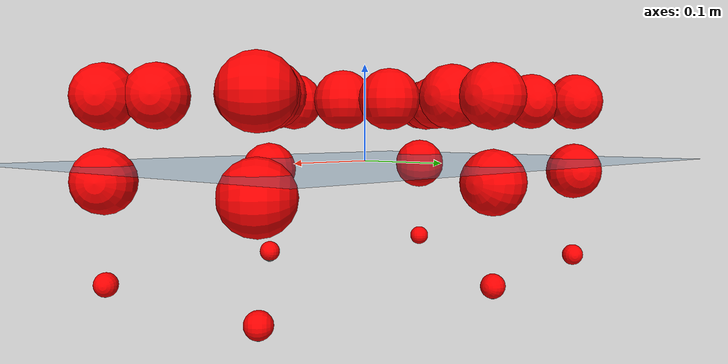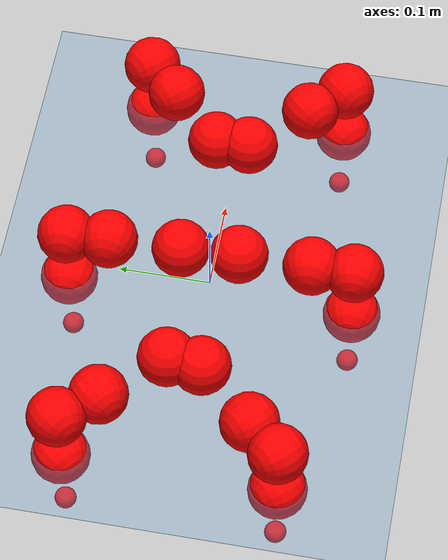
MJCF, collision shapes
<mujoco model="Golem">
  <compiler angle="radian" assetdir="assets" balanceinertia="true" inertiafromgeom="false"/>

  <option timestep="0.005" density="1.2" viscosity="2e-05"/>

  <size nkey="1"/>

  <visual>
    <quality shadowsize="8192"/>
    <map shadowclip="0.5"/>
  </visual>

  <default>
    <default class="/">
      <joint armature="0.01" damping="0.01" frictionloss="0.01"/>
      <geom contype="0" conaffinity="0" group="1" solref="-1000 -80"/>
      <site size="0.01 0.005 0.005" group="5"/>
      <general forcelimited="true" biastype="affine" gainprm="25" biasprm="0 -25 -0.5"/>
      <default class="visual">
        <geom type="mesh" group="2"/>
      </default>
      <default class="collision">
        <geom group="3"/>
      </default>
      <default class="foot">
        <geom size="0.01 0 0" condim="6" group="4" priority="1" solimp="0.015 1 0.01"/>
      </default>
      <default class="reward_collision_sphere">
        <geom group="5" rgba="1 0 0 1"/>
      </default>
    </default>
  </default>

  <asset>
    <texture type="skybox" colorspace="auto" name="//unnamed_texture_0" builtin="gradient" rgb1="0.95 0.95 0.95" rgb2="0.95 0.95 0.95" width="100" height="600"/>
    <texture type="2d" colorspace="auto" name="texplane" builtin="checker" rgb1="0.345 0.575 0.748" rgb2="0.345 0.575 0.748" markrgb="1 1 1" width="512" height="512"/>
    <material name="MatPlane" class="/" texture="texplane" texuniform="true" texrepeat="2 2" specular="0.9"/>
    <mesh name="body" class="/" file="body.stl" scale="0.001 0.001 0.001"/>
    <mesh name="coxa" class="/" file="coxa.stl" scale="0.001 0.001 0.001"/>
    <mesh name="femur" class="/" file="femur.stl" scale="0.001 0.001 0.001"/>
    <mesh name="tibia" class="/" file="tibia.stl" scale="0.001 0.001 0.001"/>
    <mesh name="tarsus" class="/" file="tarsus.stl" scale="0.001 0.001 0.001"/>
  </asset>

  <worldbody>
    <geom name="floor" class="/" size="100 100 0.125" type="plane" group="0" material="MatPlane"/>
    <light name="toplight_shadow" class="/" pos="0 0 5" dir="0.0990148 0.0990148 -0.990148" type="directional" ambient="0.04 0.04 0.04" diffuse="0.55 0.55 0.55" specular="0.12 0.12 0.12"/>
    <light name="toplight_fill" class="/" pos="0 0 5" dir="0.0990148 0.0990148 -0.990148" type="directional" castshadow="false" ambient="0.04 0.04 0.04" diffuse="0.3 0.3 0.3" specular="0.08 0.08 0.08"/>
    <body name="trunk" pos="0.000213286 -0.000191963 -0.000477226" quat="0.999999 0.000147967 0.000999058 -8.85366e-05">
      <inertial pos="-0.000574408 -0.00020752 -0.00360372" quat="1 9.40208e-05 0.000297563 -0.000292701" mass="1.84169" diaginertia="0.00607452 0.000164948 0.010629"/>
      <joint name="//unnamed_joint_0" type="free"/>
      <geom name="//unnamed_geom_1" class="/" pos="0 0 0.0648523" quat="1 0 0 0" type="mesh" rgba="0.9 0.9 0.9 1" mesh="body"/>
      <site name="imu" class="/" pos="0.126658 0.00216259 0.100673" size="0.00786234"/>
      <camera name="track" class="/" pos="0 -0.880097 0" quat="0.707107 0.707107 0 0" mode="trackcom"/>
      <camera name="ego_camera" class="/" pos="0.117694 0 0.101332" quat="-0.5 -0.5 0.5 0.5"/>
      <body name="coxa_RR" pos="-0.162038 -0.0364411 0.064807" quat="0.383123 0.000837693 -0.000424491 -0.923697">
        <inertial pos="-0.000238188 0.000255197 0.00135837" quat="1 -0.00027095 0.000137456 0.00010999" mass="0.0984578" diaginertia="0.00612915 0.000165991 0.0108116"/>
        <joint name="coxa_joint_RR" class="/" pos="0 0 0" axis="-6.24202e-05 0.00633763 -0.99998" range="-3.15222 3.10682" armature="0.0078356" damping="0.00206624" frictionloss="0.00771506"/>
        <geom name="//unnamed_geom_2" class="/" type="mesh" rgba="0.2 0.2 0.2 1" mesh="coxa"/>
        <geom name="//unnamed_geom_3" class="reward_collision_sphere" size="0.0314494" pos="-0.0271601 0 0"/>
        <body name="femur_RR" pos="0.0552284 0.00230262 -0.00112711" quat="0.500125 -0.499853 0.499991 0.50003">
          <inertial pos="-0.000274907 7.02179e-05 0.000374899" quat="0.999998 0.00164946 0.00127214 -0.000394618" mass="0.0976524" diaginertia="0.00603465 0.000164098 0.010829"/>
          <joint name="femur_joint_RR" class="/" pos="0 0 0" axis="0.00230003 -0.00110568 -0.999997" range="-3.10916 3.13731" armature="0.0073959" damping="0.000900094" frictionloss="0.00819847"/>
          <geom name="//unnamed_geom_4" class="/" type="mesh" rgba="0.9 0.9 0.9 1" mesh="femur"/>
          <geom name="//unnamed_geom_5" class="reward_collision_sphere" size="0.0314494"/>
          <body name="tibia_RR" pos="-0.000997495 -0.046637 0.00200846" quat="1.06486e-05 1 -5.1911e-05 -7.32906e-05">
            <inertial pos="0.00078151 8.62674e-05 0.000388607" quat="0.999997 0.00162415 0.0016283 -0.000387683" mass="0.0983012" diaginertia="0.00615432 0.000164634 0.0105466"/>
            <joint name="tibia_joint_RR" class="/" pos="0 0 0" axis="7.85337e-05 -0.00718286 0.999974" range="-3.1061 3.13862" armature="0.0075576" damping="0" frictionloss="0.00776617"/>
            <geom name="//unnamed_geom_6" class="/" type="mesh" rgba="0.2 0.2 0.2 1" mesh="tibia"/>
            <geom name="//unnamed_geom_7" class="reward_collision_sphere" size="0.0314494"/>
            <body name="tarsus_RR" pos="0.0778229 0.00028017 -0.00155604" quat="1 0.000414038 0.000114694 5.46726e-05">
              <inertial pos="0.0555038 0.000537978 -0.000205567" quat="0.499753 0.499195 0.50056 0.50049" mass="0.0961349" diaginertia="0.00598534 0.00016464 0.0105689"/>
              <joint name="tarsus_joint_RR" class="/" pos="0 0 0" axis="0.000266015 -0.00200456 0.999998" range="-3.12128 3.13247" armature="0.00816598" damping="0" frictionloss="0.00786975"/>
              <geom name="//unnamed_geom_8" class="/" type="mesh" rgba="0.9 0.9 0.9 1" mesh="tarsus"/>
              <geom name="foot_1" class="foot" size="0.00745089" pos="0.101398 0 0" quat="0 -0.707107 0 0.707107"/>
              <geom name="//unnamed_geom_10" class="reward_collision_sphere" size="0.0314494"/>
              <geom name="//unnamed_geom_11" class="reward_collision_sphere" size="0.0117935" pos="0.0973237 0 0"/>
              <site name="foot_1" class="foot" pos="0.101398 0 0" quat="0 -0.707107 0 0.707107" size="0.00786234"/>
            </body>
          </body>
        </body>
      </body>
      <body name="coxa_RM" pos="-0.000223485 -0.0588175 0.0648952" quat="0.706802 -0.000115576 0.000578957 -0.707411">
        <inertial pos="-0.000385995 -0.00120404 0.000276841" quat="0.999997 -5.32612e-05 0.00207232 0.00106777" mass="0.0965608" diaginertia="0.0060056 0.000166282 0.0108146"/>
        <joint name="coxa_joint_RM" class="/" pos="0 0 0" axis="0.00750746 -0.00340621 -0.999966" range="-3.14223 3.15666" armature="0.00860064" damping="0.00296363" frictionloss="0.00775679"/>
        <geom name="//unnamed_geom_12" class="/" type="mesh" rgba="0.2 0.2 0.2 1" mesh="coxa"/>
        <geom name="//unnamed_geom_13" class="reward_collision_sphere" size="0.0314494" pos="-0.0271601 0 0"/>
        <body name="femur_RM" pos="0.0513521 -0.000472653 -0.00033969" quat="0.500039 -0.49996 0.5001 0.499902">
          <inertial pos="-0.000166022 -0.000583488 0.00018736" quat="0.999997 -0.000113928 0.000768428 0.00216117" mass="0.0966241" diaginertia="0.00598007 0.000167926 0.0108709"/>
          <joint name="femur_joint_RM" class="/" pos="0 0 0" axis="-0.00263577 -0.00293602 -0.999992" range="-3.12378 3.14096" armature="0.00766132" damping="0.00147656" frictionloss="0.00788314"/>
          <geom name="//unnamed_geom_14" class="/" type="mesh" rgba="0.9 0.9 0.9 1" mesh="femur"/>
          <geom name="//unnamed_geom_15" class="reward_collision_sphere" size="0.0314494"/>
          <body name="tibia_RM" pos="0.000544325 -0.0459751 -0.000300649" quat="-0.000152238 1 -0.000299327 3.98681e-06">
            <inertial pos="-0.000854783 -0.00100527 -0.00124014" quat="0.999985 -0.00161644 -0.00403649 -0.00324977" mass="0.0966284" diaginertia="0.00617495 0.000165061 0.0107816"/>
            <joint name="tibia_joint_RM" class="/" pos="0 0 0" axis="0.000924615 0.00216474 0.999997" range="-3.13954 3.15697" armature="0.00839039" damping="0.000122849" frictionloss="0.00861516"/>
            <geom name="//unnamed_geom_16" class="/" type="mesh" rgba="0.2 0.2 0.2 1" mesh="tibia"/>
            <geom name="//unnamed_geom_17" class="reward_collision_sphere" size="0.0314494"/>
            <body name="tarsus_RM" pos="0.0781353 0.000837611 0.00174864" quat="1 -3.82717e-05 -8.59615e-05 0.00015686">
              <inertial pos="0.054435 0.00165165 0.000122047" quat="0.500328 0.499804 0.500102 0.499766" mass="0.0970731" diaginertia="0.00602113 0.000163047 0.0106918"/>
              <joint name="tarsus_joint_RM" class="/" pos="0 0 0" axis="-0.00066197 0.00038259 1" range="-3.10552 3.12211" armature="0.00865226" damping="4.70401e-05" frictionloss="0.00792904"/>
              <geom name="//unnamed_geom_18" class="/" type="mesh" rgba="0.9 0.9 0.9 1" mesh="tarsus"/>
              <geom name="foot_2" class="foot" size="0.00836166" pos="0.101398 0 0" quat="0 -0.707107 0 0.707107"/>
              <geom name="//unnamed_geom_20" class="reward_collision_sphere" size="0.0314494"/>
              <geom name="//unnamed_geom_21" class="reward_collision_sphere" size="0.0117935" pos="0.0973237 0 0"/>
              <site name="foot_2" class="foot" pos="0.101398 0 0" quat="0 -0.707107 0 0.707107" size="0.00786234"/>
            </body>
          </body>
        </body>
      </body>
      <body name="coxa_RF" pos="0.161229 -0.0372529 0.0670593" quat="0.923831 0.000302714 0.000416232 -0.382799">
        <inertial pos="-0.000127453 -0.00234851 0.000200197" quat="0.999999 0.000445932 6.57345e-05 0.00126777" mass="0.0984365" diaginertia="0.0061138 0.000165119 0.0107025"/>
        <joint name="coxa_joint_RF" class="/" pos="0 0 0" axis="0.00390613 0.00225948 -0.99999" range="-3.11923 3.16921" armature="0.00798985" damping="0" frictionloss="0.00767965"/>
        <geom name="//unnamed_geom_22" class="/" type="mesh" rgba="0.2 0.2 0.2 1" mesh="coxa"/>
        <geom name="//unnamed_geom_23" class="reward_collision_sphere" size="0.0314494" pos="-0.0271601 0 0"/>
        <body name="femur_RF" pos="0.0562929 0.00113257 -0.00166899" quat="0.500086 -0.500142 0.499412 0.500359">
          <inertial pos="0.00019601 -0.000721249 0.00159114" quat="0.999965 -0.00677496 -0.00435054 -0.00245526" mass="0.0980816" diaginertia="0.00611323 0.000161869 0.0107441"/>
          <joint name="femur_joint_RF" class="/" pos="0 0 0" axis="-0.000142166 0.00422918 -0.999991" range="-3.13611 3.13718" armature="0.00795049" damping="0" frictionloss="0.00728836"/>
          <geom name="//unnamed_geom_24" class="/" type="mesh" rgba="0.9 0.9 0.9 1" mesh="femur"/>
          <geom name="//unnamed_geom_25" class="reward_collision_sphere" size="0.0314494"/>
          <body name="tibia_RF" pos="0.000411498 -0.0490309 -0.00010816" quat="0.000266867 1 -8.84379e-05 4.50149e-05">
            <inertial pos="0.00020122 -0.000241257 0.0009698" quat="1 -0.000254308 -8.19207e-06 -7.77596e-05" mass="0.0969289" diaginertia="0.00606619 0.000166882 0.010813"/>
            <joint name="tibia_joint_RF" class="/" pos="0 0 0" axis="0.00280402 -0.0035561 0.99999" range="-3.1324 3.14401" armature="0.00818133" damping="0.00880233" frictionloss="0.0078739"/>
            <geom name="//unnamed_geom_26" class="/" type="mesh" rgba="0.2 0.2 0.2 1" mesh="tibia"/>
            <geom name="//unnamed_geom_27" class="reward_collision_sphere" size="0.0314494"/>
            <body name="tarsus_RF" pos="0.0794011 0.00136781 0.000186072" quat="1 0.000172062 -0.000635217 -0.000401876">
              <inertial pos="0.0526725 -6.72628e-05 0.00194668" quat="0.499653 0.500824 0.501089 0.49843" mass="0.0958754" diaginertia="0.00607109 0.00016108 0.010506"/>
              <joint name="tarsus_joint_RF" class="/" pos="0 0 0" axis="0.00346764 0.0104868 0.999939" range="-3.10518 3.12598" armature="0.00784959" damping="0" frictionloss="0.00787738"/>
              <geom name="//unnamed_geom_28" class="/" type="mesh" rgba="0.9 0.9 0.9 1" mesh="tarsus"/>
              <geom name="foot_3" class="foot" size="0.00778646" pos="0.101398 0 0" quat="0 -0.707107 0 0.707107"/>
              <geom name="//unnamed_geom_30" class="reward_collision_sphere" size="0.0314494"/>
              <geom name="//unnamed_geom_31" class="reward_collision_sphere" size="0.0117935" pos="0.0973237 0 0"/>
              <site name="foot_3" class="foot" pos="0.101398 0 0" quat="0 -0.707107 0 0.707107" size="0.00786234"/>
            </body>
          </body>
        </body>
      </body>
      <body name="coxa_LR" pos="-0.159549 0.0390937 0.067023" quat="0.382889 -0.000720223 -0.000271644 0.923794">
        <inertial pos="0.0017325 -0.000377387 0.00133201" quat="0.999996 -0.00204062 -0.00121319 0.0017725" mass="0.0960733" diaginertia="0.00607103 0.00016325 0.0105695"/>
        <joint name="coxa_joint_LR" class="/" pos="0 0 0" axis="-0.00517133 0.00395231 -0.999979" range="-3.13471 3.14812" armature="0.00823009" damping="0.00811188" frictionloss="0.00799061"/>
        <geom name="//unnamed_geom_32" class="/" type="mesh" rgba="0.2 0.2 0.2 1" mesh="coxa"/>
        <geom name="//unnamed_geom_33" class="reward_collision_sphere" size="0.0314494" pos="-0.0271601 0 0"/>
        <body name="femur_LR" pos="0.0548852 -0.00402316 -0.00217972" quat="0.499771 -0.499694 0.499791 0.500743">
          <inertial pos="-0.0012092 -0.000481378 0.000455158" quat="0.999999 -0.000651529 0.00145214 -0.000398262" mass="0.0962717" diaginertia="0.00604664 0.000163959 0.0105019"/>
          <joint name="femur_joint_LR" class="/" pos="0 0 0" axis="0.000846503 0.00270628 0.999996" range="-3.15491 3.18009" armature="0.00771235" damping="0.00721594" frictionloss="0.00861921"/>
          <geom name="//unnamed_geom_34" class="/" type="mesh" rgba="0.9 0.9 0.9 1" mesh="femur"/>
          <geom name="//unnamed_geom_35" class="reward_collision_sphere" size="0.0314494"/>
          <body name="tibia_LR" pos="0.000416774 -0.0495331 -0.0026178" quat="2.17231e-05 1 0.000130574 -0.000204716">
            <inertial pos="-0.00105555 -0.000195907 0.000361421" quat="0.999995 -0.00147431 0.00268296 0.000994903" mass="0.0980031" diaginertia="0.00608034 0.000165504 0.0106942"/>
            <joint name="tibia_joint_LR" class="/" pos="0 0 0" axis="-0.000731464 -0.000819294 -0.999999" range="-3.15428 3.11377" armature="0.00719317" damping="0" frictionloss="0.0081299"/>
            <geom name="//unnamed_geom_36" class="/" type="mesh" rgba="0.2 0.2 0.2 1" mesh="tibia"/>
            <geom name="//unnamed_geom_37" class="reward_collision_sphere" size="0.0314494"/>
            <body name="tarsus_LR" pos="0.079641 -3.2585e-05 -0.000115126" quat="1 -0.000318211 0.000180043 -1.17381e-05">
              <inertial pos="0.055702 0.000920685 0.000376777" quat="0.500065 0.499808 0.500061 0.500067" mass="0.0971362" diaginertia="0.00605696 0.000166566 0.0106171"/>
              <joint name="tarsus_joint_LR" class="/" pos="0 0 0" axis="0.00118335 0.00169577 -0.999998" range="-3.10773 3.13623" armature="0.0078194" damping="0" frictionloss="0.00799767"/>
              <geom name="//unnamed_geom_38" class="/" type="mesh" rgba="0.9 0.9 0.9 1" mesh="tarsus"/>
              <geom name="foot_4" class="foot" size="0.00749105" pos="0.101398 0 0" quat="0.707107 0 -0.707107 0"/>
              <geom name="//unnamed_geom_40" class="reward_collision_sphere" size="0.0314494"/>
              <geom name="//unnamed_geom_41" class="reward_collision_sphere" size="0.0117935" pos="0.0973237 0 0"/>
              <site name="foot_4" class="foot" pos="0.101398 0 0" quat="0.707107 0 -0.707107 0" size="0.00786234"/>
            </body>
          </body>
        </body>
      </body>
      <body name="coxa_LM" pos="-0.00324947 0.0581628 0.0644532" quat="0.707571 0.00109908 3.14222e-05 0.706642">
        <inertial pos="0.00118319 -0.000304804 0.000628557" quat="0.999997 -0.00246605 0.000918714 -6.77173e-05" mass="0.100909" diaginertia="0.00638748 0.000169395 0.0108356"/>
        <joint name="coxa_joint_LM" class="/" pos="0 0 0" axis="9.53686e-05 0.00172753 -0.999999" stiffness="0.00429779" range="-3.15535 3.14047" armature="0.00783564" damping="0.00768389" frictionloss="0.00812486"/>
        <geom name="//unnamed_geom_42" class="/" type="mesh" rgba="0.2 0.2 0.2 1" mesh="coxa"/>
        <geom name="//unnamed_geom_43" class="reward_collision_sphere" size="0.0314494" pos="-0.0271601 0 0"/>
        <body name="femur_LM" pos="0.0507848 0.00247103 0.000482785" quat="0.499909 -0.499841 0.500086 0.500163">
          <inertial pos="4.87857e-06 -0.000128529 -0.000170246" quat="0.999998 0.00078871 0.00174586 -0.000305835" mass="0.0946262" diaginertia="0.00600343 0.000160885 0.0104408"/>
          <joint name="femur_joint_LM" class="/" pos="0 0 0" axis="6.52153e-05 0.00013092 1" range="-3.14898 3.12888" armature="0.00812597" damping="0" frictionloss="0.0077895"/>
          <geom name="//unnamed_geom_44" class="/" type="mesh" rgba="0.9 0.9 0.9 1" mesh="femur"/>
          <geom name="//unnamed_geom_45" class="reward_collision_sphere" size="0.0314494"/>
          <body name="tibia_LM" pos="0.00073424 -0.046047 0.00143741" quat="0.000110681 1 -0.000167271 -6.69765e-06">
            <inertial pos="-0.00174144 0.000214517 0.000254025" quat="1 -5.78389e-05 0.000111374 -2.01287e-05" mass="0.0978645" diaginertia="0.00600747 0.00016424 0.0107386"/>
            <joint name="tibia_joint_LM" class="/" pos="0 0 0" axis="-0.000766586 -0.00198462 -0.999998" range="-3.13223 3.13854" armature="0.00793633" damping="0.00186562" frictionloss="0.00807402"/>
            <geom name="//unnamed_geom_46" class="/" type="mesh" rgba="0.2 0.2 0.2 1" mesh="tibia"/>
            <geom name="//unnamed_geom_47" class="reward_collision_sphere" size="0.0314494"/>
            <body name="tarsus_LM" pos="0.080254 0.000313411 -0.00127208" quat="1 -0.000127346 -0.000201145 0.000102728">
              <inertial pos="0.0549734 0.000340376 -3.65366e-05" quat="0.501723 0.499119 0.500753 0.498398" mass="0.0976907" diaginertia="0.00613731 0.000165571 0.0108199"/>
              <joint name="tarsus_joint_LM" class="/" pos="0 0 0" axis="-0.000791145 0.00111232 -0.999999" stiffness="0.0017529" range="-3.15197 3.13268" armature="0.00786346" damping="0.00670154" frictionloss="0.00754297"/>
              <geom name="//unnamed_geom_48" class="/" type="mesh" rgba="0.9 0.9 0.9 1" mesh="tarsus"/>
              <geom name="foot_5" class="foot" size="0.00795063" pos="0.101398 0 0" quat="0.707107 0 -0.707107 0"/>
              <geom name="//unnamed_geom_50" class="reward_collision_sphere" size="0.0314494"/>
              <geom name="//unnamed_geom_51" class="reward_collision_sphere" size="0.0117935" pos="0.0973237 0 0"/>
              <site name="foot_5" class="foot" pos="0.101398 0 0" quat="0.707107 0 -0.707107 0" size="0.00786234"/>
            </body>
          </body>
        </body>
      </body>
      <body name="coxa_LF" pos="0.162924 0.0378682 0.0652411" quat="0.92389 0.000114349 0.000100522 0.382657">
        <inertial pos="-0.000622364 -0.000102871 -0.000264413" quat="0.999997 0.000437748 0.00164402 0.00179145" mass="0.096207" diaginertia="0.00605221 0.000161674 0.0105838"/>
        <joint name="coxa_joint_LF" class="/" pos="0 0 0" axis="-0.0032659 -3.76727e-05 -0.999995" range="-3.14043 3.15764" armature="0.0078888" damping="0" frictionloss="0.00758197"/>
        <geom name="//unnamed_geom_52" class="/" type="mesh" rgba="0.2 0.2 0.2 1" mesh="coxa"/>
        <geom name="//unnamed_geom_53" class="reward_collision_sphere" size="0.0314494" pos="-0.0271601 0 0"/>
        <body name="femur_LF" pos="0.0532812 -0.00169862 -0.00225144" quat="0.500076 -0.499831 0.499964 0.500129">
          <inertial pos="0.000193 5.61455e-05 -0.000492277" quat="0.999951 -0.00627175 -0.00522031 -0.00553555" mass="0.097479" diaginertia="0.00615806 0.0001623 0.01075"/>
          <joint name="femur_joint_LF" class="/" pos="0 0 0" axis="0.00215065 0.00113181 0.999997" range="-3.13639 3.15624" armature="0.00767176" damping="0" frictionloss="0.00704969"/>
          <geom name="//unnamed_geom_54" class="/" type="mesh" rgba="0.9 0.9 0.9 1" mesh="femur"/>
          <geom name="//unnamed_geom_55" class="reward_collision_sphere" size="0.0314494"/>
          <body name="tibia_LF" pos="3.21396e-05 -0.0479716 0.000156547" quat="5.6887e-05 1 0.000126595 0.000151764">
            <inertial pos="9.50781e-05 -0.00053883 5.26931e-05" quat="0.999993 0.000825726 -0.00255585 -0.00272931" mass="0.0970108" diaginertia="0.00614366 0.000166484 0.010768"/>
            <joint name="tibia_joint_LF" class="/" pos="0 0 0" axis="-0.00130543 0.00187793 -0.999997" range="-3.17716 3.14397" armature="0.00757994" damping="0" frictionloss="0.00787004"/>
            <geom name="//unnamed_geom_56" class="/" type="mesh" rgba="0.2 0.2 0.2 1" mesh="tibia"/>
            <geom name="//unnamed_geom_57" class="reward_collision_sphere" size="0.0314494"/>
            <body name="tarsus_LF" pos="0.0802864 -0.000183713 0.000345729" quat="1 5.43711e-05 6.6658e-07 -3.83105e-05">
              <inertial pos="0.0564695 0.000932356 0.00216772" quat="0.499297 0.499648 0.500672 0.500382" mass="0.0984669" diaginertia="0.00609133 0.000167158 0.0108878"/>
              <joint name="tarsus_joint_LF" class="/" pos="0 0 0" axis="0.00377097 0.000878565 -0.999993" stiffness="0.0264285" range="-3.13825 3.12683" armature="0.00789286" damping="0.0268251" frictionloss="0.00803543"/>
              <geom name="//unnamed_geom_58" class="/" type="mesh" rgba="0.9 0.9 0.9 1" mesh="tarsus"/>
              <geom name="foot_6" class="foot" size="0.00793682" pos="0.101398 0 0" quat="0.707107 0 -0.707107 0"/>
              <geom name="//unnamed_geom_60" class="reward_collision_sphere" size="0.0314494"/>
              <geom name="//unnamed_geom_61" class="reward_collision_sphere" size="0.0117935" pos="0.0973237 0 0"/>
              <site name="foot_6" class="foot" pos="0.101398 0 0" quat="0.707107 0 -0.707107 0" size="0.00786234"/>
            </body>
          </body>
        </body>
      </body>
    </body>
  </worldbody>

  <contact>
    <pair class="/" geom1="floor" geom2="foot_1" name="//unnamed_contact_0"/>
    <pair class="/" geom1="floor" geom2="foot_2" name="//unnamed_contact_1"/>
    <pair class="/" geom1="floor" geom2="foot_3" name="//unnamed_contact_2"/>
    <pair class="/" geom1="floor" geom2="foot_4" name="//unnamed_contact_3"/>
    <pair class="/" geom1="floor" geom2="foot_5" name="//unnamed_contact_4"/>
    <pair class="/" geom1="floor" geom2="foot_6" name="//unnamed_contact_5"/>
  </contact>

  <actuator>
    <general name="coxa_joint_RR" class="/" joint="coxa_joint_RR" forcerange="-5.80176 5.80176" gainprm="18.0466" biasprm="0 -18.0466 -0.390569"/>
    <general name="femur_joint_RR" class="/" joint="femur_joint_RR" forcerange="-5.53546 5.53546" gainprm="18.0466" biasprm="0 -18.0466 -0.390569"/>
    <general name="tibia_joint_RR" class="/" joint="tibia_joint_RR" forcerange="-5.84501 5.84501" gainprm="18.0466" biasprm="0 -18.0466 -0.390569"/>
    <general name="tarsus_joint_RR" class="/" joint="tarsus_joint_RR" forcerange="-5.73197 5.73197" gainprm="18.0466" biasprm="0 -18.0466 -0.390569"/>
    <general name="coxa_joint_RM" class="/" joint="coxa_joint_RM" forcerange="-5.81679 5.81679" gainprm="18.0466" biasprm="0 -18.0466 -0.390569"/>
    <general name="femur_joint_RM" class="/" joint="femur_joint_RM" forcerange="-5.94218 5.94218" gainprm="18.0466" biasprm="0 -18.0466 -0.390569"/>
    <general name="tibia_joint_RM" class="/" joint="tibia_joint_RM" forcerange="-5.94012 5.94012" gainprm="18.0466" biasprm="0 -18.0466 -0.390569"/>
    <general name="tarsus_joint_RM" class="/" joint="tarsus_joint_RM" forcerange="-6.14864 6.14864" gainprm="18.0466" biasprm="0 -18.0466 -0.390569"/>
    <general name="coxa_joint_RF" class="/" joint="coxa_joint_RF" forcerange="-6.04644 6.04644" gainprm="18.0466" biasprm="0 -18.0466 -0.390569"/>
    <general name="femur_joint_RF" class="/" joint="femur_joint_RF" forcerange="-5.4294 5.4294" gainprm="18.0466" biasprm="0 -18.0466 -0.390569"/>
    <general name="tibia_joint_RF" class="/" joint="tibia_joint_RF" forcerange="-5.9517 5.9517" gainprm="18.0466" biasprm="0 -18.0466 -0.390569"/>
    <general name="tarsus_joint_RF" class="/" joint="tarsus_joint_RF" forcerange="-5.79135 5.79135" gainprm="18.0466" biasprm="0 -18.0466 -0.390569"/>
    <general name="coxa_joint_LR" class="/" joint="coxa_joint_LR" forcerange="-5.5691 5.5691" gainprm="18.0466" biasprm="0 -18.0466 -0.390569"/>
    <general name="femur_joint_LR" class="/" joint="femur_joint_LR" forcerange="-5.71896 5.71896" gainprm="18.0466" biasprm="0 -18.0466 -0.390569"/>
    <general name="tibia_joint_LR" class="/" joint="tibia_joint_LR" forcerange="-5.94696 5.94696" gainprm="18.0466" biasprm="0 -18.0466 -0.390569"/>
    <general name="tarsus_joint_LR" class="/" joint="tarsus_joint_LR" forcerange="-5.64158 5.64158" gainprm="18.0466" biasprm="0 -18.0466 -0.390569"/>
    <general name="coxa_joint_LM" class="/" joint="coxa_joint_LM" forcerange="-5.73116 5.73116" gainprm="18.0466" biasprm="0 -18.0466 -0.390569"/>
    <general name="femur_joint_LM" class="/" joint="femur_joint_LM" forcerange="-5.76149 5.76149" gainprm="18.0466" biasprm="0 -18.0466 -0.390569"/>
    <general name="tibia_joint_LM" class="/" joint="tibia_joint_LM" forcerange="-5.33824 5.33824" gainprm="18.0466" biasprm="0 -18.0466 -0.390569"/>
    <general name="tarsus_joint_LM" class="/" joint="tarsus_joint_LM" forcerange="-5.74527 5.74527" gainprm="18.0466" biasprm="0 -18.0466 -0.390569"/>
    <general name="coxa_joint_LF" class="/" joint="coxa_joint_LF" forcerange="-5.95109 5.95109" gainprm="18.0466" biasprm="0 -18.0466 -0.390569"/>
    <general name="femur_joint_LF" class="/" joint="femur_joint_LF" forcerange="-5.98392 5.98392" gainprm="18.0466" biasprm="0 -18.0466 -0.390569"/>
    <general name="tibia_joint_LF" class="/" joint="tibia_joint_LF" forcerange="-5.80945 5.80945" gainprm="18.0466" biasprm="0 -18.0466 -0.390569"/>
    <general name="tarsus_joint_LF" class="/" joint="tarsus_joint_LF" forcerange="-5.88946 5.88946" gainprm="18.0466" biasprm="0 -18.0466 -0.390569"/>
  </actuator>

  <sensor>
    <gyro site="imu" name="imu_angular_velocity"/>
    <velocimeter site="imu" name="imu_linear_velocity"/>
    <framelinvel objtype="site" objname="foot_1" name="foot_1_global_linear_velocity"/>
    <framelinvel objtype="site" objname="foot_2" name="foot_2_global_linear_velocity"/>
    <framelinvel objtype="site" objname="foot_3" name="foot_3_global_linear_velocity"/>
    <framelinvel objtype="site" objname="foot_4" name="foot_4_global_linear_velocity"/>
    <framelinvel objtype="site" objname="foot_5" name="foot_5_global_linear_velocity"/>
    <framelinvel objtype="site" objname="foot_6" name="foot_6_global_linear_velocity"/>
  </sensor>

  <keyframe>
    <key name="home" qpos="0 0 0.1457 1 0 0 0 0 0 0 0 0 0 0 0 0 0 0 0 0 0 0 0 0 0 0 0 0 0 0 0"/>
  </keyframe>
</mujoco>
